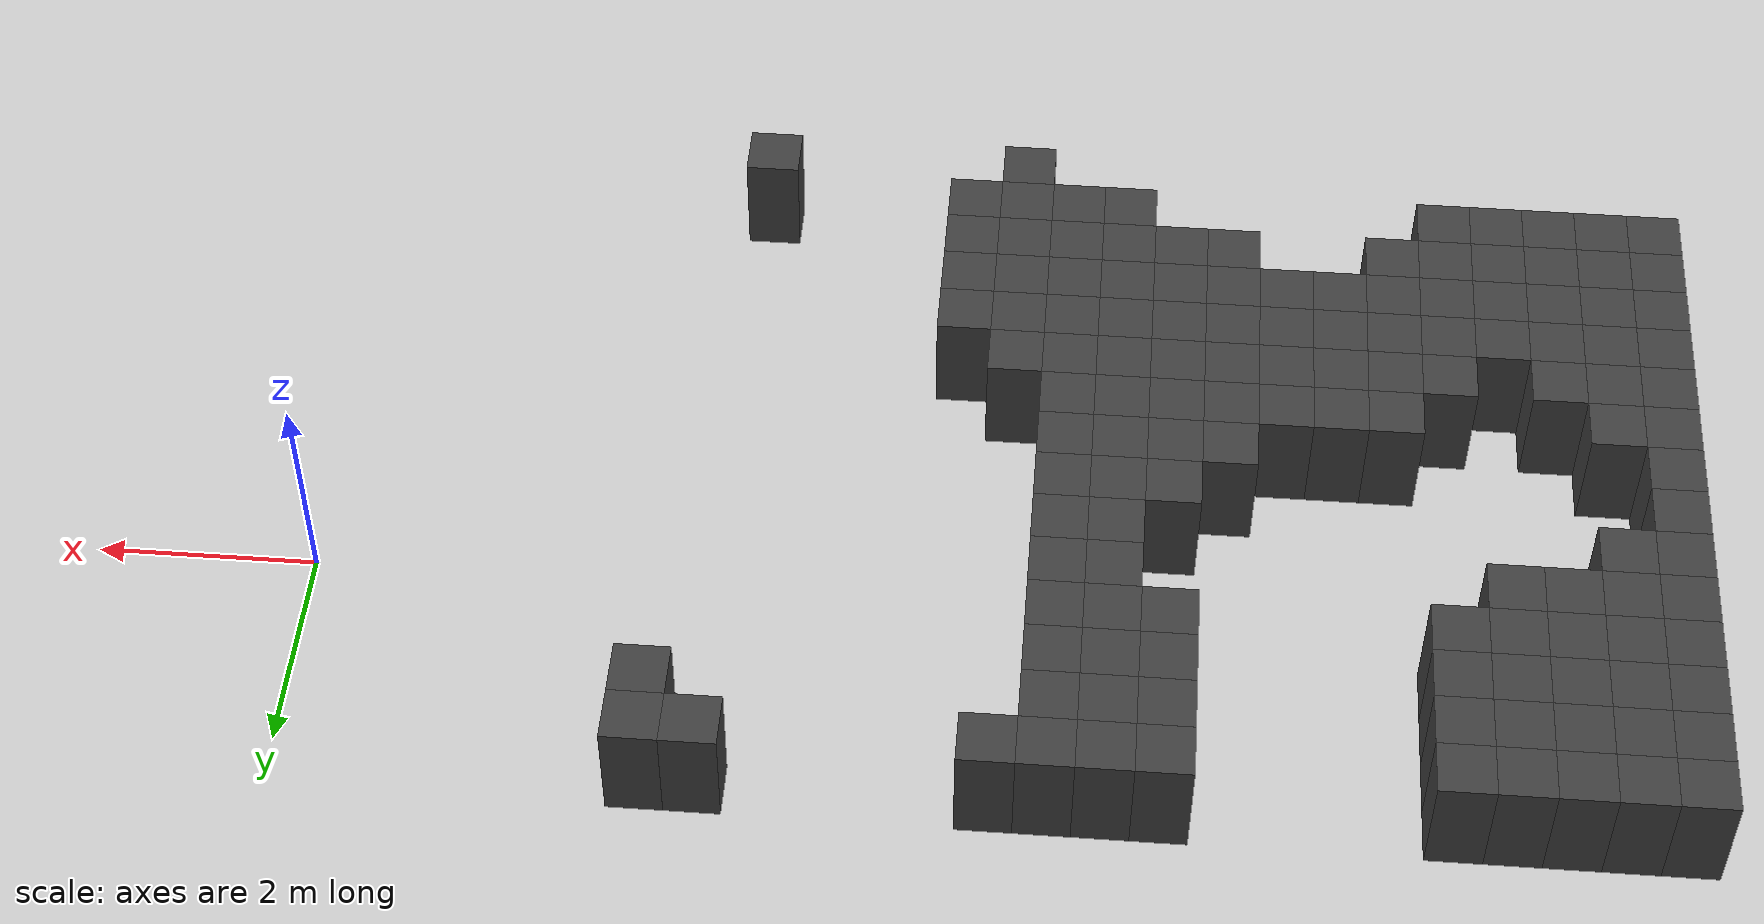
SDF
<sdf version="1.7">
 <world name="map_7981">
  <model name="ground_plane">
   <static>true</static>
   <link name="link">
    <collision name="collision">
     <geometry><plane><normal>0 0 1</normal><size>200 200</size></plane></geometry>
    </collision>
    <visual name="visual">
     <geometry><plane><normal>0 0 1</normal><size>200 200</size></plane></geometry>
     <material><ambient>0.8 0.8 0.8 1</ambient><diffuse>0.8 0.8 0.8 1</diffuse></material>
    </visual>
   </link>
  </model>
  <model name="maze_environment">
   <static>true</static>
   <link name="wall_288">
    <pose>-12.250 2.250 0.500 0 0 0</pose>
    <collision name="col"><geometry><box><size>0.5 0.5 1.0</size></box></geometry></collision>
    <visual name="vis">
     <geometry><box><size>0.5 0.5 1.0</size></box></geometry>
     <material><ambient>0.15 0.15 0.15 1</ambient><diffuse>0.25 0.25 0.25 1</diffuse></material>
    </visual>
   </link>
   <link name="wall_289">
    <pose>-11.750 2.250 0.500 0 0 0</pose>
    <collision name="col"><geometry><box><size>0.5 0.5 1.0</size></box></geometry></collision>
    <visual name="vis">
     <geometry><box><size>0.5 0.5 1.0</size></box></geometry>
     <material><ambient>0.15 0.15 0.15 1</ambient><diffuse>0.25 0.25 0.25 1</diffuse></material>
    </visual>
   </link>
   <link name="wall_290">
    <pose>-11.250 2.250 0.500 0 0 0</pose>
    <collision name="col"><geometry><box><size>0.5 0.5 1.0</size></box></geometry></collision>
    <visual name="vis">
     <geometry><box><size>0.5 0.5 1.0</size></box></geometry>
     <material><ambient>0.15 0.15 0.15 1</ambient><diffuse>0.25 0.25 0.25 1</diffuse></material>
    </visual>
   </link>
   <link name="wall_291">
    <pose>-10.750 2.250 0.500 0 0 0</pose>
    <collision name="col"><geometry><box><size>0.5 0.5 1.0</size></box></geometry></collision>
    <visual name="vis">
     <geometry><box><size>0.5 0.5 1.0</size></box></geometry>
     <material><ambient>0.15 0.15 0.15 1</ambient><diffuse>0.25 0.25 0.25 1</diffuse></material>
    </visual>
   </link>
   <link name="wall_292">
    <pose>-10.250 2.250 0.500 0 0 0</pose>
    <collision name="col"><geometry><box><size>0.5 0.5 1.0</size></box></geometry></collision>
    <visual name="vis">
     <geometry><box><size>0.5 0.5 1.0</size></box></geometry>
     <material><ambient>0.15 0.15 0.15 1</ambient><diffuse>0.25 0.25 0.25 1</diffuse></material>
    </visual>
   </link>
   <link name="wall_293">
    <pose>-7.750 2.250 0.500 0 0 0</pose>
    <collision name="col"><geometry><box><size>0.5 0.5 1.0</size></box></geometry></collision>
    <visual name="vis">
     <geometry><box><size>0.5 0.5 1.0</size></box></geometry>
     <material><ambient>0.15 0.15 0.15 1</ambient><diffuse>0.25 0.25 0.25 1</diffuse></material>
    </visual>
   </link>
   <link name="wall_294">
    <pose>-7.250 2.250 0.500 0 0 0</pose>
    <collision name="col"><geometry><box><size>0.5 0.5 1.0</size></box></geometry></collision>
    <visual name="vis">
     <geometry><box><size>0.5 0.5 1.0</size></box></geometry>
     <material><ambient>0.15 0.15 0.15 1</ambient><diffuse>0.25 0.25 0.25 1</diffuse></material>
    </visual>
   </link>
   <link name="wall_295">
    <pose>-6.750 2.250 0.500 0 0 0</pose>
    <collision name="col"><geometry><box><size>0.5 0.5 1.0</size></box></geometry></collision>
    <visual name="vis">
     <geometry><box><size>0.5 0.5 1.0</size></box></geometry>
     <material><ambient>0.15 0.15 0.15 1</ambient><diffuse>0.25 0.25 0.25 1</diffuse></material>
    </visual>
   </link>
   <link name="wall_296">
    <pose>-6.250 2.250 0.500 0 0 0</pose>
    <collision name="col"><geometry><box><size>0.5 0.5 1.0</size></box></geometry></collision>
    <visual name="vis">
     <geometry><box><size>0.5 0.5 1.0</size></box></geometry>
     <material><ambient>0.15 0.15 0.15 1</ambient><diffuse>0.25 0.25 0.25 1</diffuse></material>
    </visual>
   </link>
   <link name="wall_297">
    <pose>-3.750 2.250 0.500 0 0 0</pose>
    <collision name="col"><geometry><box><size>0.5 0.5 1.0</size></box></geometry></collision>
    <visual name="vis">
     <geometry><box><size>0.5 0.5 1.0</size></box></geometry>
     <material><ambient>0.15 0.15 0.15 1</ambient><diffuse>0.25 0.25 0.25 1</diffuse></material>
    </visual>
   </link>
   <link name="wall_298">
    <pose>-3.250 2.250 0.500 0 0 0</pose>
    <collision name="col"><geometry><box><size>0.5 0.5 1.0</size></box></geometry></collision>
    <visual name="vis">
     <geometry><box><size>0.5 0.5 1.0</size></box></geometry>
     <material><ambient>0.15 0.15 0.15 1</ambient><diffuse>0.25 0.25 0.25 1</diffuse></material>
    </visual>
   </link>
   <link name="wall_313">
    <pose>-12.250 1.750 0.500 0 0 0</pose>
    <collision name="col"><geometry><box><size>0.5 0.5 1.0</size></box></geometry></collision>
    <visual name="vis">
     <geometry><box><size>0.5 0.5 1.0</size></box></geometry>
     <material><ambient>0.15 0.15 0.15 1</ambient><diffuse>0.25 0.25 0.25 1</diffuse></material>
    </visual>
   </link>
   <link name="wall_314">
    <pose>-11.750 1.750 0.500 0 0 0</pose>
    <collision name="col"><geometry><box><size>0.5 0.5 1.0</size></box></geometry></collision>
    <visual name="vis">
     <geometry><box><size>0.5 0.5 1.0</size></box></geometry>
     <material><ambient>0.15 0.15 0.15 1</ambient><diffuse>0.25 0.25 0.25 1</diffuse></material>
    </visual>
   </link>
   <link name="wall_315">
    <pose>-11.250 1.750 0.500 0 0 0</pose>
    <collision name="col"><geometry><box><size>0.5 0.5 1.0</size></box></geometry></collision>
    <visual name="vis">
     <geometry><box><size>0.5 0.5 1.0</size></box></geometry>
     <material><ambient>0.15 0.15 0.15 1</ambient><diffuse>0.25 0.25 0.25 1</diffuse></material>
    </visual>
   </link>
   <link name="wall_316">
    <pose>-10.750 1.750 0.500 0 0 0</pose>
    <collision name="col"><geometry><box><size>0.5 0.5 1.0</size></box></geometry></collision>
    <visual name="vis">
     <geometry><box><size>0.5 0.5 1.0</size></box></geometry>
     <material><ambient>0.15 0.15 0.15 1</ambient><diffuse>0.25 0.25 0.25 1</diffuse></material>
    </visual>
   </link>
   <link name="wall_317">
    <pose>-10.250 1.750 0.500 0 0 0</pose>
    <collision name="col"><geometry><box><size>0.5 0.5 1.0</size></box></geometry></collision>
    <visual name="vis">
     <geometry><box><size>0.5 0.5 1.0</size></box></geometry>
     <material><ambient>0.15 0.15 0.15 1</ambient><diffuse>0.25 0.25 0.25 1</diffuse></material>
    </visual>
   </link>
   <link name="wall_318">
    <pose>-7.750 1.750 0.500 0 0 0</pose>
    <collision name="col"><geometry><box><size>0.5 0.5 1.0</size></box></geometry></collision>
    <visual name="vis">
     <geometry><box><size>0.5 0.5 1.0</size></box></geometry>
     <material><ambient>0.15 0.15 0.15 1</ambient><diffuse>0.25 0.25 0.25 1</diffuse></material>
    </visual>
   </link>
   <link name="wall_319">
    <pose>-7.250 1.750 0.500 0 0 0</pose>
    <collision name="col"><geometry><box><size>0.5 0.5 1.0</size></box></geometry></collision>
    <visual name="vis">
     <geometry><box><size>0.5 0.5 1.0</size></box></geometry>
     <material><ambient>0.15 0.15 0.15 1</ambient><diffuse>0.25 0.25 0.25 1</diffuse></material>
    </visual>
   </link>
   <link name="wall_320">
    <pose>-6.750 1.750 0.500 0 0 0</pose>
    <collision name="col"><geometry><box><size>0.5 0.5 1.0</size></box></geometry></collision>
    <visual name="vis">
     <geometry><box><size>0.5 0.5 1.0</size></box></geometry>
     <material><ambient>0.15 0.15 0.15 1</ambient><diffuse>0.25 0.25 0.25 1</diffuse></material>
    </visual>
   </link>
   <link name="wall_321">
    <pose>-3.250 1.750 0.500 0 0 0</pose>
    <collision name="col"><geometry><box><size>0.5 0.5 1.0</size></box></geometry></collision>
    <visual name="vis">
     <geometry><box><size>0.5 0.5 1.0</size></box></geometry>
     <material><ambient>0.15 0.15 0.15 1</ambient><diffuse>0.25 0.25 0.25 1</diffuse></material>
    </visual>
   </link>
   <link name="wall_339">
    <pose>-12.250 1.250 0.500 0 0 0</pose>
    <collision name="col"><geometry><box><size>0.5 0.5 1.0</size></box></geometry></collision>
    <visual name="vis">
     <geometry><box><size>0.5 0.5 1.0</size></box></geometry>
     <material><ambient>0.15 0.15 0.15 1</ambient><diffuse>0.25 0.25 0.25 1</diffuse></material>
    </visual>
   </link>
   <link name="wall_340">
    <pose>-11.750 1.250 0.500 0 0 0</pose>
    <collision name="col"><geometry><box><size>0.5 0.5 1.0</size></box></geometry></collision>
    <visual name="vis">
     <geometry><box><size>0.5 0.5 1.0</size></box></geometry>
     <material><ambient>0.15 0.15 0.15 1</ambient><diffuse>0.25 0.25 0.25 1</diffuse></material>
    </visual>
   </link>
   <link name="wall_341">
    <pose>-11.250 1.250 0.500 0 0 0</pose>
    <collision name="col"><geometry><box><size>0.5 0.5 1.0</size></box></geometry></collision>
    <visual name="vis">
     <geometry><box><size>0.5 0.5 1.0</size></box></geometry>
     <material><ambient>0.15 0.15 0.15 1</ambient><diffuse>0.25 0.25 0.25 1</diffuse></material>
    </visual>
   </link>
   <link name="wall_342">
    <pose>-10.750 1.250 0.500 0 0 0</pose>
    <collision name="col"><geometry><box><size>0.5 0.5 1.0</size></box></geometry></collision>
    <visual name="vis">
     <geometry><box><size>0.5 0.5 1.0</size></box></geometry>
     <material><ambient>0.15 0.15 0.15 1</ambient><diffuse>0.25 0.25 0.25 1</diffuse></material>
    </visual>
   </link>
   <link name="wall_343">
    <pose>-10.250 1.250 0.500 0 0 0</pose>
    <collision name="col"><geometry><box><size>0.5 0.5 1.0</size></box></geometry></collision>
    <visual name="vis">
     <geometry><box><size>0.5 0.5 1.0</size></box></geometry>
     <material><ambient>0.15 0.15 0.15 1</ambient><diffuse>0.25 0.25 0.25 1</diffuse></material>
    </visual>
   </link>
   <link name="wall_344">
    <pose>-7.750 1.250 0.500 0 0 0</pose>
    <collision name="col"><geometry><box><size>0.5 0.5 1.0</size></box></geometry></collision>
    <visual name="vis">
     <geometry><box><size>0.5 0.5 1.0</size></box></geometry>
     <material><ambient>0.15 0.15 0.15 1</ambient><diffuse>0.25 0.25 0.25 1</diffuse></material>
    </visual>
   </link>
   <link name="wall_345">
    <pose>-7.250 1.250 0.500 0 0 0</pose>
    <collision name="col"><geometry><box><size>0.5 0.5 1.0</size></box></geometry></collision>
    <visual name="vis">
     <geometry><box><size>0.5 0.5 1.0</size></box></geometry>
     <material><ambient>0.15 0.15 0.15 1</ambient><diffuse>0.25 0.25 0.25 1</diffuse></material>
    </visual>
   </link>
   <link name="wall_346">
    <pose>-6.750 1.250 0.500 0 0 0</pose>
    <collision name="col"><geometry><box><size>0.5 0.5 1.0</size></box></geometry></collision>
    <visual name="vis">
     <geometry><box><size>0.5 0.5 1.0</size></box></geometry>
     <material><ambient>0.15 0.15 0.15 1</ambient><diffuse>0.25 0.25 0.25 1</diffuse></material>
    </visual>
   </link>
   <link name="wall_358">
    <pose>-12.250 0.750 0.500 0 0 0</pose>
    <collision name="col"><geometry><box><size>0.5 0.5 1.0</size></box></geometry></collision>
    <visual name="vis">
     <geometry><box><size>0.5 0.5 1.0</size></box></geometry>
     <material><ambient>0.15 0.15 0.15 1</ambient><diffuse>0.25 0.25 0.25 1</diffuse></material>
    </visual>
   </link>
   <link name="wall_359">
    <pose>-11.750 0.750 0.500 0 0 0</pose>
    <collision name="col"><geometry><box><size>0.5 0.5 1.0</size></box></geometry></collision>
    <visual name="vis">
     <geometry><box><size>0.5 0.5 1.0</size></box></geometry>
     <material><ambient>0.15 0.15 0.15 1</ambient><diffuse>0.25 0.25 0.25 1</diffuse></material>
    </visual>
   </link>
   <link name="wall_360">
    <pose>-11.250 0.750 0.500 0 0 0</pose>
    <collision name="col"><geometry><box><size>0.5 0.5 1.0</size></box></geometry></collision>
    <visual name="vis">
     <geometry><box><size>0.5 0.5 1.0</size></box></geometry>
     <material><ambient>0.15 0.15 0.15 1</ambient><diffuse>0.25 0.25 0.25 1</diffuse></material>
    </visual>
   </link>
   <link name="wall_361">
    <pose>-10.750 0.750 0.500 0 0 0</pose>
    <collision name="col"><geometry><box><size>0.5 0.5 1.0</size></box></geometry></collision>
    <visual name="vis">
     <geometry><box><size>0.5 0.5 1.0</size></box></geometry>
     <material><ambient>0.15 0.15 0.15 1</ambient><diffuse>0.25 0.25 0.25 1</diffuse></material>
    </visual>
   </link>
   <link name="wall_362">
    <pose>-10.250 0.750 0.500 0 0 0</pose>
    <collision name="col"><geometry><box><size>0.5 0.5 1.0</size></box></geometry></collision>
    <visual name="vis">
     <geometry><box><size>0.5 0.5 1.0</size></box></geometry>
     <material><ambient>0.15 0.15 0.15 1</ambient><diffuse>0.25 0.25 0.25 1</diffuse></material>
    </visual>
   </link>
   <link name="wall_363">
    <pose>-7.750 0.750 0.500 0 0 0</pose>
    <collision name="col"><geometry><box><size>0.5 0.5 1.0</size></box></geometry></collision>
    <visual name="vis">
     <geometry><box><size>0.5 0.5 1.0</size></box></geometry>
     <material><ambient>0.15 0.15 0.15 1</ambient><diffuse>0.25 0.25 0.25 1</diffuse></material>
    </visual>
   </link>
   <link name="wall_364">
    <pose>-7.250 0.750 0.500 0 0 0</pose>
    <collision name="col"><geometry><box><size>0.5 0.5 1.0</size></box></geometry></collision>
    <visual name="vis">
     <geometry><box><size>0.5 0.5 1.0</size></box></geometry>
     <material><ambient>0.15 0.15 0.15 1</ambient><diffuse>0.25 0.25 0.25 1</diffuse></material>
    </visual>
   </link>
   <link name="wall_365">
    <pose>-6.750 0.750 0.500 0 0 0</pose>
    <collision name="col"><geometry><box><size>0.5 0.5 1.0</size></box></geometry></collision>
    <visual name="vis">
     <geometry><box><size>0.5 0.5 1.0</size></box></geometry>
     <material><ambient>0.15 0.15 0.15 1</ambient><diffuse>0.25 0.25 0.25 1</diffuse></material>
    </visual>
   </link>
   <link name="wall_370">
    <pose>-12.250 0.250 0.500 0 0 0</pose>
    <collision name="col"><geometry><box><size>0.5 0.5 1.0</size></box></geometry></collision>
    <visual name="vis">
     <geometry><box><size>0.5 0.5 1.0</size></box></geometry>
     <material><ambient>0.15 0.15 0.15 1</ambient><diffuse>0.25 0.25 0.25 1</diffuse></material>
    </visual>
   </link>
   <link name="wall_371">
    <pose>-11.750 0.250 0.500 0 0 0</pose>
    <collision name="col"><geometry><box><size>0.5 0.5 1.0</size></box></geometry></collision>
    <visual name="vis">
     <geometry><box><size>0.5 0.5 1.0</size></box></geometry>
     <material><ambient>0.15 0.15 0.15 1</ambient><diffuse>0.25 0.25 0.25 1</diffuse></material>
    </visual>
   </link>
   <link name="wall_372">
    <pose>-11.250 0.250 0.500 0 0 0</pose>
    <collision name="col"><geometry><box><size>0.5 0.5 1.0</size></box></geometry></collision>
    <visual name="vis">
     <geometry><box><size>0.5 0.5 1.0</size></box></geometry>
     <material><ambient>0.15 0.15 0.15 1</ambient><diffuse>0.25 0.25 0.25 1</diffuse></material>
    </visual>
   </link>
   <link name="wall_373">
    <pose>-10.750 0.250 0.500 0 0 0</pose>
    <collision name="col"><geometry><box><size>0.5 0.5 1.0</size></box></geometry></collision>
    <visual name="vis">
     <geometry><box><size>0.5 0.5 1.0</size></box></geometry>
     <material><ambient>0.15 0.15 0.15 1</ambient><diffuse>0.25 0.25 0.25 1</diffuse></material>
    </visual>
   </link>
   <link name="wall_374">
    <pose>-7.250 0.250 0.500 0 0 0</pose>
    <collision name="col"><geometry><box><size>0.5 0.5 1.0</size></box></geometry></collision>
    <visual name="vis">
     <geometry><box><size>0.5 0.5 1.0</size></box></geometry>
     <material><ambient>0.15 0.15 0.15 1</ambient><diffuse>0.25 0.25 0.25 1</diffuse></material>
    </visual>
   </link>
   <link name="wall_375">
    <pose>-6.750 0.250 0.500 0 0 0</pose>
    <collision name="col"><geometry><box><size>0.5 0.5 1.0</size></box></geometry></collision>
    <visual name="vis">
     <geometry><box><size>0.5 0.5 1.0</size></box></geometry>
     <material><ambient>0.15 0.15 0.15 1</ambient><diffuse>0.25 0.25 0.25 1</diffuse></material>
    </visual>
   </link>
   <link name="wall_380">
    <pose>-12.250 -0.250 0.500 0 0 0</pose>
    <collision name="col"><geometry><box><size>0.5 0.5 1.0</size></box></geometry></collision>
    <visual name="vis">
     <geometry><box><size>0.5 0.5 1.0</size></box></geometry>
     <material><ambient>0.15 0.15 0.15 1</ambient><diffuse>0.25 0.25 0.25 1</diffuse></material>
    </visual>
   </link>
   <link name="wall_381">
    <pose>-11.750 -0.250 0.500 0 0 0</pose>
    <collision name="col"><geometry><box><size>0.5 0.5 1.0</size></box></geometry></collision>
    <visual name="vis">
     <geometry><box><size>0.5 0.5 1.0</size></box></geometry>
     <material><ambient>0.15 0.15 0.15 1</ambient><diffuse>0.25 0.25 0.25 1</diffuse></material>
    </visual>
   </link>
   <link name="wall_382">
    <pose>-7.250 -0.250 0.500 0 0 0</pose>
    <collision name="col"><geometry><box><size>0.5 0.5 1.0</size></box></geometry></collision>
    <visual name="vis">
     <geometry><box><size>0.5 0.5 1.0</size></box></geometry>
     <material><ambient>0.15 0.15 0.15 1</ambient><diffuse>0.25 0.25 0.25 1</diffuse></material>
    </visual>
   </link>
   <link name="wall_383">
    <pose>-6.750 -0.250 0.500 0 0 0</pose>
    <collision name="col"><geometry><box><size>0.5 0.5 1.0</size></box></geometry></collision>
    <visual name="vis">
     <geometry><box><size>0.5 0.5 1.0</size></box></geometry>
     <material><ambient>0.15 0.15 0.15 1</ambient><diffuse>0.25 0.25 0.25 1</diffuse></material>
    </visual>
   </link>
   <link name="wall_392">
    <pose>-12.250 -0.750 0.500 0 0 0</pose>
    <collision name="col"><geometry><box><size>0.5 0.5 1.0</size></box></geometry></collision>
    <visual name="vis">
     <geometry><box><size>0.5 0.5 1.0</size></box></geometry>
     <material><ambient>0.15 0.15 0.15 1</ambient><diffuse>0.25 0.25 0.25 1</diffuse></material>
    </visual>
   </link>
   <link name="wall_393">
    <pose>-7.750 -0.750 0.500 0 0 0</pose>
    <collision name="col"><geometry><box><size>0.5 0.5 1.0</size></box></geometry></collision>
    <visual name="vis">
     <geometry><box><size>0.5 0.5 1.0</size></box></geometry>
     <material><ambient>0.15 0.15 0.15 1</ambient><diffuse>0.25 0.25 0.25 1</diffuse></material>
    </visual>
   </link>
   <link name="wall_394">
    <pose>-7.250 -0.750 0.500 0 0 0</pose>
    <collision name="col"><geometry><box><size>0.5 0.5 1.0</size></box></geometry></collision>
    <visual name="vis">
     <geometry><box><size>0.5 0.5 1.0</size></box></geometry>
     <material><ambient>0.15 0.15 0.15 1</ambient><diffuse>0.25 0.25 0.25 1</diffuse></material>
    </visual>
   </link>
   <link name="wall_395">
    <pose>-6.750 -0.750 0.500 0 0 0</pose>
    <collision name="col"><geometry><box><size>0.5 0.5 1.0</size></box></geometry></collision>
    <visual name="vis">
     <geometry><box><size>0.5 0.5 1.0</size></box></geometry>
     <material><ambient>0.15 0.15 0.15 1</ambient><diffuse>0.25 0.25 0.25 1</diffuse></material>
    </visual>
   </link>
   <link name="wall_405">
    <pose>-12.250 -1.250 0.500 0 0 0</pose>
    <collision name="col"><geometry><box><size>0.5 0.5 1.0</size></box></geometry></collision>
    <visual name="vis">
     <geometry><box><size>0.5 0.5 1.0</size></box></geometry>
     <material><ambient>0.15 0.15 0.15 1</ambient><diffuse>0.25 0.25 0.25 1</diffuse></material>
    </visual>
   </link>
   <link name="wall_406">
    <pose>-8.250 -1.250 0.500 0 0 0</pose>
    <collision name="col"><geometry><box><size>0.5 0.5 1.0</size></box></geometry></collision>
    <visual name="vis">
     <geometry><box><size>0.5 0.5 1.0</size></box></geometry>
     <material><ambient>0.15 0.15 0.15 1</ambient><diffuse>0.25 0.25 0.25 1</diffuse></material>
    </visual>
   </link>
   <link name="wall_407">
    <pose>-7.750 -1.250 0.500 0 0 0</pose>
    <collision name="col"><geometry><box><size>0.5 0.5 1.0</size></box></geometry></collision>
    <visual name="vis">
     <geometry><box><size>0.5 0.5 1.0</size></box></geometry>
     <material><ambient>0.15 0.15 0.15 1</ambient><diffuse>0.25 0.25 0.25 1</diffuse></material>
    </visual>
   </link>
   <link name="wall_408">
    <pose>-7.250 -1.250 0.500 0 0 0</pose>
    <collision name="col"><geometry><box><size>0.5 0.5 1.0</size></box></geometry></collision>
    <visual name="vis">
     <geometry><box><size>0.5 0.5 1.0</size></box></geometry>
     <material><ambient>0.15 0.15 0.15 1</ambient><diffuse>0.25 0.25 0.25 1</diffuse></material>
    </visual>
   </link>
   <link name="wall_409">
    <pose>-6.750 -1.250 0.500 0 0 0</pose>
    <collision name="col"><geometry><box><size>0.5 0.5 1.0</size></box></geometry></collision>
    <visual name="vis">
     <geometry><box><size>0.5 0.5 1.0</size></box></geometry>
     <material><ambient>0.15 0.15 0.15 1</ambient><diffuse>0.25 0.25 0.25 1</diffuse></material>
    </visual>
   </link>
   <link name="wall_420">
    <pose>-12.250 -1.750 0.500 0 0 0</pose>
    <collision name="col"><geometry><box><size>0.5 0.5 1.0</size></box></geometry></collision>
    <visual name="vis">
     <geometry><box><size>0.5 0.5 1.0</size></box></geometry>
     <material><ambient>0.15 0.15 0.15 1</ambient><diffuse>0.25 0.25 0.25 1</diffuse></material>
    </visual>
   </link>
   <link name="wall_421">
    <pose>-11.750 -1.750 0.500 0 0 0</pose>
    <collision name="col"><geometry><box><size>0.5 0.5 1.0</size></box></geometry></collision>
    <visual name="vis">
     <geometry><box><size>0.5 0.5 1.0</size></box></geometry>
     <material><ambient>0.15 0.15 0.15 1</ambient><diffuse>0.25 0.25 0.25 1</diffuse></material>
    </visual>
   </link>
   <link name="wall_422">
    <pose>-9.750 -1.750 0.500 0 0 0</pose>
    <collision name="col"><geometry><box><size>0.5 0.5 1.0</size></box></geometry></collision>
    <visual name="vis">
     <geometry><box><size>0.5 0.5 1.0</size></box></geometry>
     <material><ambient>0.15 0.15 0.15 1</ambient><diffuse>0.25 0.25 0.25 1</diffuse></material>
    </visual>
   </link>
   <link name="wall_423">
    <pose>-9.250 -1.750 0.500 0 0 0</pose>
    <collision name="col"><geometry><box><size>0.5 0.5 1.0</size></box></geometry></collision>
    <visual name="vis">
     <geometry><box><size>0.5 0.5 1.0</size></box></geometry>
     <material><ambient>0.15 0.15 0.15 1</ambient><diffuse>0.25 0.25 0.25 1</diffuse></material>
    </visual>
   </link>
   <link name="wall_424">
    <pose>-8.750 -1.750 0.500 0 0 0</pose>
    <collision name="col"><geometry><box><size>0.5 0.5 1.0</size></box></geometry></collision>
    <visual name="vis">
     <geometry><box><size>0.5 0.5 1.0</size></box></geometry>
     <material><ambient>0.15 0.15 0.15 1</ambient><diffuse>0.25 0.25 0.25 1</diffuse></material>
    </visual>
   </link>
   <link name="wall_425">
    <pose>-8.250 -1.750 0.500 0 0 0</pose>
    <collision name="col"><geometry><box><size>0.5 0.5 1.0</size></box></geometry></collision>
    <visual name="vis">
     <geometry><box><size>0.5 0.5 1.0</size></box></geometry>
     <material><ambient>0.15 0.15 0.15 1</ambient><diffuse>0.25 0.25 0.25 1</diffuse></material>
    </visual>
   </link>
   <link name="wall_426">
    <pose>-7.750 -1.750 0.500 0 0 0</pose>
    <collision name="col"><geometry><box><size>0.5 0.5 1.0</size></box></geometry></collision>
    <visual name="vis">
     <geometry><box><size>0.5 0.5 1.0</size></box></geometry>
     <material><ambient>0.15 0.15 0.15 1</ambient><diffuse>0.25 0.25 0.25 1</diffuse></material>
    </visual>
   </link>
   <link name="wall_427">
    <pose>-7.250 -1.750 0.500 0 0 0</pose>
    <collision name="col"><geometry><box><size>0.5 0.5 1.0</size></box></geometry></collision>
    <visual name="vis">
     <geometry><box><size>0.5 0.5 1.0</size></box></geometry>
     <material><ambient>0.15 0.15 0.15 1</ambient><diffuse>0.25 0.25 0.25 1</diffuse></material>
    </visual>
   </link>
   <link name="wall_428">
    <pose>-6.750 -1.750 0.500 0 0 0</pose>
    <collision name="col"><geometry><box><size>0.5 0.5 1.0</size></box></geometry></collision>
    <visual name="vis">
     <geometry><box><size>0.5 0.5 1.0</size></box></geometry>
     <material><ambient>0.15 0.15 0.15 1</ambient><diffuse>0.25 0.25 0.25 1</diffuse></material>
    </visual>
   </link>
   <link name="wall_438">
    <pose>-12.250 -2.250 0.500 0 0 0</pose>
    <collision name="col"><geometry><box><size>0.5 0.5 1.0</size></box></geometry></collision>
    <visual name="vis">
     <geometry><box><size>0.5 0.5 1.0</size></box></geometry>
     <material><ambient>0.15 0.15 0.15 1</ambient><diffuse>0.25 0.25 0.25 1</diffuse></material>
    </visual>
   </link>
   <link name="wall_439">
    <pose>-11.750 -2.250 0.500 0 0 0</pose>
    <collision name="col"><geometry><box><size>0.5 0.5 1.0</size></box></geometry></collision>
    <visual name="vis">
     <geometry><box><size>0.5 0.5 1.0</size></box></geometry>
     <material><ambient>0.15 0.15 0.15 1</ambient><diffuse>0.25 0.25 0.25 1</diffuse></material>
    </visual>
   </link>
   <link name="wall_440">
    <pose>-11.250 -2.250 0.500 0 0 0</pose>
    <collision name="col"><geometry><box><size>0.5 0.5 1.0</size></box></geometry></collision>
    <visual name="vis">
     <geometry><box><size>0.5 0.5 1.0</size></box></geometry>
     <material><ambient>0.15 0.15 0.15 1</ambient><diffuse>0.25 0.25 0.25 1</diffuse></material>
    </visual>
   </link>
   <link name="wall_441">
    <pose>-10.250 -2.250 0.500 0 0 0</pose>
    <collision name="col"><geometry><box><size>0.5 0.5 1.0</size></box></geometry></collision>
    <visual name="vis">
     <geometry><box><size>0.5 0.5 1.0</size></box></geometry>
     <material><ambient>0.15 0.15 0.15 1</ambient><diffuse>0.25 0.25 0.25 1</diffuse></material>
    </visual>
   </link>
   <link name="wall_442">
    <pose>-9.750 -2.250 0.500 0 0 0</pose>
    <collision name="col"><geometry><box><size>0.5 0.5 1.0</size></box></geometry></collision>
    <visual name="vis">
     <geometry><box><size>0.5 0.5 1.0</size></box></geometry>
     <material><ambient>0.15 0.15 0.15 1</ambient><diffuse>0.25 0.25 0.25 1</diffuse></material>
    </visual>
   </link>
   <link name="wall_443">
    <pose>-9.250 -2.250 0.500 0 0 0</pose>
    <collision name="col"><geometry><box><size>0.5 0.5 1.0</size></box></geometry></collision>
    <visual name="vis">
     <geometry><box><size>0.5 0.5 1.0</size></box></geometry>
     <material><ambient>0.15 0.15 0.15 1</ambient><diffuse>0.25 0.25 0.25 1</diffuse></material>
    </visual>
   </link>
   <link name="wall_444">
    <pose>-8.750 -2.250 0.500 0 0 0</pose>
    <collision name="col"><geometry><box><size>0.5 0.5 1.0</size></box></geometry></collision>
    <visual name="vis">
     <geometry><box><size>0.5 0.5 1.0</size></box></geometry>
     <material><ambient>0.15 0.15 0.15 1</ambient><diffuse>0.25 0.25 0.25 1</diffuse></material>
    </visual>
   </link>
   <link name="wall_445">
    <pose>-8.250 -2.250 0.500 0 0 0</pose>
    <collision name="col"><geometry><box><size>0.5 0.5 1.0</size></box></geometry></collision>
    <visual name="vis">
     <geometry><box><size>0.5 0.5 1.0</size></box></geometry>
     <material><ambient>0.15 0.15 0.15 1</ambient><diffuse>0.25 0.25 0.25 1</diffuse></material>
    </visual>
   </link>
   <link name="wall_446">
    <pose>-7.750 -2.250 0.500 0 0 0</pose>
    <collision name="col"><geometry><box><size>0.5 0.5 1.0</size></box></geometry></collision>
    <visual name="vis">
     <geometry><box><size>0.5 0.5 1.0</size></box></geometry>
     <material><ambient>0.15 0.15 0.15 1</ambient><diffuse>0.25 0.25 0.25 1</diffuse></material>
    </visual>
   </link>
   <link name="wall_447">
    <pose>-7.250 -2.250 0.500 0 0 0</pose>
    <collision name="col"><geometry><box><size>0.5 0.5 1.0</size></box></geometry></collision>
    <visual name="vis">
     <geometry><box><size>0.5 0.5 1.0</size></box></geometry>
     <material><ambient>0.15 0.15 0.15 1</ambient><diffuse>0.25 0.25 0.25 1</diffuse></material>
    </visual>
   </link>
   <link name="wall_448">
    <pose>-6.750 -2.250 0.500 0 0 0</pose>
    <collision name="col"><geometry><box><size>0.5 0.5 1.0</size></box></geometry></collision>
    <visual name="vis">
     <geometry><box><size>0.5 0.5 1.0</size></box></geometry>
     <material><ambient>0.15 0.15 0.15 1</ambient><diffuse>0.25 0.25 0.25 1</diffuse></material>
    </visual>
   </link>
   <link name="wall_449">
    <pose>-6.250 -2.250 0.500 0 0 0</pose>
    <collision name="col"><geometry><box><size>0.5 0.5 1.0</size></box></geometry></collision>
    <visual name="vis">
     <geometry><box><size>0.5 0.5 1.0</size></box></geometry>
     <material><ambient>0.15 0.15 0.15 1</ambient><diffuse>0.25 0.25 0.25 1</diffuse></material>
    </visual>
   </link>
   <link name="wall_457">
    <pose>-12.250 -2.750 0.500 0 0 0</pose>
    <collision name="col"><geometry><box><size>0.5 0.5 1.0</size></box></geometry></collision>
    <visual name="vis">
     <geometry><box><size>0.5 0.5 1.0</size></box></geometry>
     <material><ambient>0.15 0.15 0.15 1</ambient><diffuse>0.25 0.25 0.25 1</diffuse></material>
    </visual>
   </link>
   <link name="wall_458">
    <pose>-11.750 -2.750 0.500 0 0 0</pose>
    <collision name="col"><geometry><box><size>0.5 0.5 1.0</size></box></geometry></collision>
    <visual name="vis">
     <geometry><box><size>0.5 0.5 1.0</size></box></geometry>
     <material><ambient>0.15 0.15 0.15 1</ambient><diffuse>0.25 0.25 0.25 1</diffuse></material>
    </visual>
   </link>
   <link name="wall_459">
    <pose>-11.250 -2.750 0.500 0 0 0</pose>
    <collision name="col"><geometry><box><size>0.5 0.5 1.0</size></box></geometry></collision>
    <visual name="vis">
     <geometry><box><size>0.5 0.5 1.0</size></box></geometry>
     <material><ambient>0.15 0.15 0.15 1</ambient><diffuse>0.25 0.25 0.25 1</diffuse></material>
    </visual>
   </link>
   <link name="wall_460">
    <pose>-10.750 -2.750 0.500 0 0 0</pose>
    <collision name="col"><geometry><box><size>0.5 0.5 1.0</size></box></geometry></collision>
    <visual name="vis">
     <geometry><box><size>0.5 0.5 1.0</size></box></geometry>
     <material><ambient>0.15 0.15 0.15 1</ambient><diffuse>0.25 0.25 0.25 1</diffuse></material>
    </visual>
   </link>
   <link name="wall_461">
    <pose>-10.250 -2.750 0.500 0 0 0</pose>
    <collision name="col"><geometry><box><size>0.5 0.5 1.0</size></box></geometry></collision>
    <visual name="vis">
     <geometry><box><size>0.5 0.5 1.0</size></box></geometry>
     <material><ambient>0.15 0.15 0.15 1</ambient><diffuse>0.25 0.25 0.25 1</diffuse></material>
    </visual>
   </link>
   <link name="wall_462">
    <pose>-9.750 -2.750 0.500 0 0 0</pose>
    <collision name="col"><geometry><box><size>0.5 0.5 1.0</size></box></geometry></collision>
    <visual name="vis">
     <geometry><box><size>0.5 0.5 1.0</size></box></geometry>
     <material><ambient>0.15 0.15 0.15 1</ambient><diffuse>0.25 0.25 0.25 1</diffuse></material>
    </visual>
   </link>
   <link name="wall_463">
    <pose>-9.250 -2.750 0.500 0 0 0</pose>
    <collision name="col"><geometry><box><size>0.5 0.5 1.0</size></box></geometry></collision>
    <visual name="vis">
     <geometry><box><size>0.5 0.5 1.0</size></box></geometry>
     <material><ambient>0.15 0.15 0.15 1</ambient><diffuse>0.25 0.25 0.25 1</diffuse></material>
    </visual>
   </link>
   <link name="wall_464">
    <pose>-8.750 -2.750 0.500 0 0 0</pose>
    <collision name="col"><geometry><box><size>0.5 0.5 1.0</size></box></geometry></collision>
    <visual name="vis">
     <geometry><box><size>0.5 0.5 1.0</size></box></geometry>
     <material><ambient>0.15 0.15 0.15 1</ambient><diffuse>0.25 0.25 0.25 1</diffuse></material>
    </visual>
   </link>
   <link name="wall_465">
    <pose>-8.250 -2.750 0.500 0 0 0</pose>
    <collision name="col"><geometry><box><size>0.5 0.5 1.0</size></box></geometry></collision>
    <visual name="vis">
     <geometry><box><size>0.5 0.5 1.0</size></box></geometry>
     <material><ambient>0.15 0.15 0.15 1</ambient><diffuse>0.25 0.25 0.25 1</diffuse></material>
    </visual>
   </link>
   <link name="wall_466">
    <pose>-7.750 -2.750 0.500 0 0 0</pose>
    <collision name="col"><geometry><box><size>0.5 0.5 1.0</size></box></geometry></collision>
    <visual name="vis">
     <geometry><box><size>0.5 0.5 1.0</size></box></geometry>
     <material><ambient>0.15 0.15 0.15 1</ambient><diffuse>0.25 0.25 0.25 1</diffuse></material>
    </visual>
   </link>
   <link name="wall_467">
    <pose>-7.250 -2.750 0.500 0 0 0</pose>
    <collision name="col"><geometry><box><size>0.5 0.5 1.0</size></box></geometry></collision>
    <visual name="vis">
     <geometry><box><size>0.5 0.5 1.0</size></box></geometry>
     <material><ambient>0.15 0.15 0.15 1</ambient><diffuse>0.25 0.25 0.25 1</diffuse></material>
    </visual>
   </link>
   <link name="wall_468">
    <pose>-6.750 -2.750 0.500 0 0 0</pose>
    <collision name="col"><geometry><box><size>0.5 0.5 1.0</size></box></geometry></collision>
    <visual name="vis">
     <geometry><box><size>0.5 0.5 1.0</size></box></geometry>
     <material><ambient>0.15 0.15 0.15 1</ambient><diffuse>0.25 0.25 0.25 1</diffuse></material>
    </visual>
   </link>
   <link name="wall_469">
    <pose>-6.250 -2.750 0.500 0 0 0</pose>
    <collision name="col"><geometry><box><size>0.5 0.5 1.0</size></box></geometry></collision>
    <visual name="vis">
     <geometry><box><size>0.5 0.5 1.0</size></box></geometry>
     <material><ambient>0.15 0.15 0.15 1</ambient><diffuse>0.25 0.25 0.25 1</diffuse></material>
    </visual>
   </link>
   <link name="wall_470">
    <pose>-5.750 -2.750 0.500 0 0 0</pose>
    <collision name="col"><geometry><box><size>0.5 0.5 1.0</size></box></geometry></collision>
    <visual name="vis">
     <geometry><box><size>0.5 0.5 1.0</size></box></geometry>
     <material><ambient>0.15 0.15 0.15 1</ambient><diffuse>0.25 0.25 0.25 1</diffuse></material>
    </visual>
   </link>
   <link name="wall_476">
    <pose>-12.250 -3.250 0.500 0 0 0</pose>
    <collision name="col"><geometry><box><size>0.5 0.5 1.0</size></box></geometry></collision>
    <visual name="vis">
     <geometry><box><size>0.5 0.5 1.0</size></box></geometry>
     <material><ambient>0.15 0.15 0.15 1</ambient><diffuse>0.25 0.25 0.25 1</diffuse></material>
    </visual>
   </link>
   <link name="wall_477">
    <pose>-11.750 -3.250 0.500 0 0 0</pose>
    <collision name="col"><geometry><box><size>0.5 0.5 1.0</size></box></geometry></collision>
    <visual name="vis">
     <geometry><box><size>0.5 0.5 1.0</size></box></geometry>
     <material><ambient>0.15 0.15 0.15 1</ambient><diffuse>0.25 0.25 0.25 1</diffuse></material>
    </visual>
   </link>
   <link name="wall_478">
    <pose>-11.250 -3.250 0.500 0 0 0</pose>
    <collision name="col"><geometry><box><size>0.5 0.5 1.0</size></box></geometry></collision>
    <visual name="vis">
     <geometry><box><size>0.5 0.5 1.0</size></box></geometry>
     <material><ambient>0.15 0.15 0.15 1</ambient><diffuse>0.25 0.25 0.25 1</diffuse></material>
    </visual>
   </link>
   <link name="wall_479">
    <pose>-10.750 -3.250 0.500 0 0 0</pose>
    <collision name="col"><geometry><box><size>0.5 0.5 1.0</size></box></geometry></collision>
    <visual name="vis">
     <geometry><box><size>0.5 0.5 1.0</size></box></geometry>
     <material><ambient>0.15 0.15 0.15 1</ambient><diffuse>0.25 0.25 0.25 1</diffuse></material>
    </visual>
   </link>
   <link name="wall_480">
    <pose>-10.250 -3.250 0.500 0 0 0</pose>
    <collision name="col"><geometry><box><size>0.5 0.5 1.0</size></box></geometry></collision>
    <visual name="vis">
     <geometry><box><size>0.5 0.5 1.0</size></box></geometry>
     <material><ambient>0.15 0.15 0.15 1</ambient><diffuse>0.25 0.25 0.25 1</diffuse></material>
    </visual>
   </link>
   <link name="wall_481">
    <pose>-9.750 -3.250 0.500 0 0 0</pose>
    <collision name="col"><geometry><box><size>0.5 0.5 1.0</size></box></geometry></collision>
    <visual name="vis">
     <geometry><box><size>0.5 0.5 1.0</size></box></geometry>
     <material><ambient>0.15 0.15 0.15 1</ambient><diffuse>0.25 0.25 0.25 1</diffuse></material>
    </visual>
   </link>
   <link name="wall_482">
    <pose>-9.250 -3.250 0.500 0 0 0</pose>
    <collision name="col"><geometry><box><size>0.5 0.5 1.0</size></box></geometry></collision>
    <visual name="vis">
     <geometry><box><size>0.5 0.5 1.0</size></box></geometry>
     <material><ambient>0.15 0.15 0.15 1</ambient><diffuse>0.25 0.25 0.25 1</diffuse></material>
    </visual>
   </link>
   <link name="wall_483">
    <pose>-8.750 -3.250 0.500 0 0 0</pose>
    <collision name="col"><geometry><box><size>0.5 0.5 1.0</size></box></geometry></collision>
    <visual name="vis">
     <geometry><box><size>0.5 0.5 1.0</size></box></geometry>
     <material><ambient>0.15 0.15 0.15 1</ambient><diffuse>0.25 0.25 0.25 1</diffuse></material>
    </visual>
   </link>
   <link name="wall_484">
    <pose>-8.250 -3.250 0.500 0 0 0</pose>
    <collision name="col"><geometry><box><size>0.5 0.5 1.0</size></box></geometry></collision>
    <visual name="vis">
     <geometry><box><size>0.5 0.5 1.0</size></box></geometry>
     <material><ambient>0.15 0.15 0.15 1</ambient><diffuse>0.25 0.25 0.25 1</diffuse></material>
    </visual>
   </link>
   <link name="wall_485">
    <pose>-7.750 -3.250 0.500 0 0 0</pose>
    <collision name="col"><geometry><box><size>0.5 0.5 1.0</size></box></geometry></collision>
    <visual name="vis">
     <geometry><box><size>0.5 0.5 1.0</size></box></geometry>
     <material><ambient>0.15 0.15 0.15 1</ambient><diffuse>0.25 0.25 0.25 1</diffuse></material>
    </visual>
   </link>
   <link name="wall_486">
    <pose>-7.250 -3.250 0.500 0 0 0</pose>
    <collision name="col"><geometry><box><size>0.5 0.5 1.0</size></box></geometry></collision>
    <visual name="vis">
     <geometry><box><size>0.5 0.5 1.0</size></box></geometry>
     <material><ambient>0.15 0.15 0.15 1</ambient><diffuse>0.25 0.25 0.25 1</diffuse></material>
    </visual>
   </link>
   <link name="wall_487">
    <pose>-6.750 -3.250 0.500 0 0 0</pose>
    <collision name="col"><geometry><box><size>0.5 0.5 1.0</size></box></geometry></collision>
    <visual name="vis">
     <geometry><box><size>0.5 0.5 1.0</size></box></geometry>
     <material><ambient>0.15 0.15 0.15 1</ambient><diffuse>0.25 0.25 0.25 1</diffuse></material>
    </visual>
   </link>
   <link name="wall_488">
    <pose>-6.250 -3.250 0.500 0 0 0</pose>
    <collision name="col"><geometry><box><size>0.5 0.5 1.0</size></box></geometry></collision>
    <visual name="vis">
     <geometry><box><size>0.5 0.5 1.0</size></box></geometry>
     <material><ambient>0.15 0.15 0.15 1</ambient><diffuse>0.25 0.25 0.25 1</diffuse></material>
    </visual>
   </link>
   <link name="wall_489">
    <pose>-5.750 -3.250 0.500 0 0 0</pose>
    <collision name="col"><geometry><box><size>0.5 0.5 1.0</size></box></geometry></collision>
    <visual name="vis">
     <geometry><box><size>0.5 0.5 1.0</size></box></geometry>
     <material><ambient>0.15 0.15 0.15 1</ambient><diffuse>0.25 0.25 0.25 1</diffuse></material>
    </visual>
   </link>
   <link name="wall_498">
    <pose>-12.250 -3.750 0.500 0 0 0</pose>
    <collision name="col"><geometry><box><size>0.5 0.5 1.0</size></box></geometry></collision>
    <visual name="vis">
     <geometry><box><size>0.5 0.5 1.0</size></box></geometry>
     <material><ambient>0.15 0.15 0.15 1</ambient><diffuse>0.25 0.25 0.25 1</diffuse></material>
    </visual>
   </link>
   <link name="wall_499">
    <pose>-11.750 -3.750 0.500 0 0 0</pose>
    <collision name="col"><geometry><box><size>0.5 0.5 1.0</size></box></geometry></collision>
    <visual name="vis">
     <geometry><box><size>0.5 0.5 1.0</size></box></geometry>
     <material><ambient>0.15 0.15 0.15 1</ambient><diffuse>0.25 0.25 0.25 1</diffuse></material>
    </visual>
   </link>
   <link name="wall_500">
    <pose>-11.250 -3.750 0.500 0 0 0</pose>
    <collision name="col"><geometry><box><size>0.5 0.5 1.0</size></box></geometry></collision>
    <visual name="vis">
     <geometry><box><size>0.5 0.5 1.0</size></box></geometry>
     <material><ambient>0.15 0.15 0.15 1</ambient><diffuse>0.25 0.25 0.25 1</diffuse></material>
    </visual>
   </link>
   <link name="wall_501">
    <pose>-10.750 -3.750 0.500 0 0 0</pose>
    <collision name="col"><geometry><box><size>0.5 0.5 1.0</size></box></geometry></collision>
    <visual name="vis">
     <geometry><box><size>0.5 0.5 1.0</size></box></geometry>
     <material><ambient>0.15 0.15 0.15 1</ambient><diffuse>0.25 0.25 0.25 1</diffuse></material>
    </visual>
   </link>
   <link name="wall_502">
    <pose>-10.250 -3.750 0.500 0 0 0</pose>
    <collision name="col"><geometry><box><size>0.5 0.5 1.0</size></box></geometry></collision>
    <visual name="vis">
     <geometry><box><size>0.5 0.5 1.0</size></box></geometry>
     <material><ambient>0.15 0.15 0.15 1</ambient><diffuse>0.25 0.25 0.25 1</diffuse></material>
    </visual>
   </link>
   <link name="wall_503">
    <pose>-9.750 -3.750 0.500 0 0 0</pose>
    <collision name="col"><geometry><box><size>0.5 0.5 1.0</size></box></geometry></collision>
    <visual name="vis">
     <geometry><box><size>0.5 0.5 1.0</size></box></geometry>
     <material><ambient>0.15 0.15 0.15 1</ambient><diffuse>0.25 0.25 0.25 1</diffuse></material>
    </visual>
   </link>
   <link name="wall_504">
    <pose>-8.250 -3.750 0.500 0 0 0</pose>
    <collision name="col"><geometry><box><size>0.5 0.5 1.0</size></box></geometry></collision>
    <visual name="vis">
     <geometry><box><size>0.5 0.5 1.0</size></box></geometry>
     <material><ambient>0.15 0.15 0.15 1</ambient><diffuse>0.25 0.25 0.25 1</diffuse></material>
    </visual>
   </link>
   <link name="wall_505">
    <pose>-7.750 -3.750 0.500 0 0 0</pose>
    <collision name="col"><geometry><box><size>0.5 0.5 1.0</size></box></geometry></collision>
    <visual name="vis">
     <geometry><box><size>0.5 0.5 1.0</size></box></geometry>
     <material><ambient>0.15 0.15 0.15 1</ambient><diffuse>0.25 0.25 0.25 1</diffuse></material>
    </visual>
   </link>
   <link name="wall_506">
    <pose>-7.250 -3.750 0.500 0 0 0</pose>
    <collision name="col"><geometry><box><size>0.5 0.5 1.0</size></box></geometry></collision>
    <visual name="vis">
     <geometry><box><size>0.5 0.5 1.0</size></box></geometry>
     <material><ambient>0.15 0.15 0.15 1</ambient><diffuse>0.25 0.25 0.25 1</diffuse></material>
    </visual>
   </link>
   <link name="wall_507">
    <pose>-6.750 -3.750 0.500 0 0 0</pose>
    <collision name="col"><geometry><box><size>0.5 0.5 1.0</size></box></geometry></collision>
    <visual name="vis">
     <geometry><box><size>0.5 0.5 1.0</size></box></geometry>
     <material><ambient>0.15 0.15 0.15 1</ambient><diffuse>0.25 0.25 0.25 1</diffuse></material>
    </visual>
   </link>
   <link name="wall_508">
    <pose>-6.250 -3.750 0.500 0 0 0</pose>
    <collision name="col"><geometry><box><size>0.5 0.5 1.0</size></box></geometry></collision>
    <visual name="vis">
     <geometry><box><size>0.5 0.5 1.0</size></box></geometry>
     <material><ambient>0.15 0.15 0.15 1</ambient><diffuse>0.25 0.25 0.25 1</diffuse></material>
    </visual>
   </link>
   <link name="wall_509">
    <pose>-5.750 -3.750 0.500 0 0 0</pose>
    <collision name="col"><geometry><box><size>0.5 0.5 1.0</size></box></geometry></collision>
    <visual name="vis">
     <geometry><box><size>0.5 0.5 1.0</size></box></geometry>
     <material><ambient>0.15 0.15 0.15 1</ambient><diffuse>0.25 0.25 0.25 1</diffuse></material>
    </visual>
   </link>
   <link name="wall_519">
    <pose>-12.250 -4.250 0.500 0 0 0</pose>
    <collision name="col"><geometry><box><size>0.5 0.5 1.0</size></box></geometry></collision>
    <visual name="vis">
     <geometry><box><size>0.5 0.5 1.0</size></box></geometry>
     <material><ambient>0.15 0.15 0.15 1</ambient><diffuse>0.25 0.25 0.25 1</diffuse></material>
    </visual>
   </link>
   <link name="wall_520">
    <pose>-11.750 -4.250 0.500 0 0 0</pose>
    <collision name="col"><geometry><box><size>0.5 0.5 1.0</size></box></geometry></collision>
    <visual name="vis">
     <geometry><box><size>0.5 0.5 1.0</size></box></geometry>
     <material><ambient>0.15 0.15 0.15 1</ambient><diffuse>0.25 0.25 0.25 1</diffuse></material>
    </visual>
   </link>
   <link name="wall_521">
    <pose>-11.250 -4.250 0.500 0 0 0</pose>
    <collision name="col"><geometry><box><size>0.5 0.5 1.0</size></box></geometry></collision>
    <visual name="vis">
     <geometry><box><size>0.5 0.5 1.0</size></box></geometry>
     <material><ambient>0.15 0.15 0.15 1</ambient><diffuse>0.25 0.25 0.25 1</diffuse></material>
    </visual>
   </link>
   <link name="wall_522">
    <pose>-10.750 -4.250 0.500 0 0 0</pose>
    <collision name="col"><geometry><box><size>0.5 0.5 1.0</size></box></geometry></collision>
    <visual name="vis">
     <geometry><box><size>0.5 0.5 1.0</size></box></geometry>
     <material><ambient>0.15 0.15 0.15 1</ambient><diffuse>0.25 0.25 0.25 1</diffuse></material>
    </visual>
   </link>
   <link name="wall_523">
    <pose>-10.250 -4.250 0.500 0 0 0</pose>
    <collision name="col"><geometry><box><size>0.5 0.5 1.0</size></box></geometry></collision>
    <visual name="vis">
     <geometry><box><size>0.5 0.5 1.0</size></box></geometry>
     <material><ambient>0.15 0.15 0.15 1</ambient><diffuse>0.25 0.25 0.25 1</diffuse></material>
    </visual>
   </link>
   <link name="wall_524">
    <pose>-7.250 -4.250 0.500 0 0 0</pose>
    <collision name="col"><geometry><box><size>0.5 0.5 1.0</size></box></geometry></collision>
    <visual name="vis">
     <geometry><box><size>0.5 0.5 1.0</size></box></geometry>
     <material><ambient>0.15 0.15 0.15 1</ambient><diffuse>0.25 0.25 0.25 1</diffuse></material>
    </visual>
   </link>
   <link name="wall_525">
    <pose>-6.750 -4.250 0.500 0 0 0</pose>
    <collision name="col"><geometry><box><size>0.5 0.5 1.0</size></box></geometry></collision>
    <visual name="vis">
     <geometry><box><size>0.5 0.5 1.0</size></box></geometry>
     <material><ambient>0.15 0.15 0.15 1</ambient><diffuse>0.25 0.25 0.25 1</diffuse></material>
    </visual>
   </link>
   <link name="wall_526">
    <pose>-6.250 -4.250 0.500 0 0 0</pose>
    <collision name="col"><geometry><box><size>0.5 0.5 1.0</size></box></geometry></collision>
    <visual name="vis">
     <geometry><box><size>0.5 0.5 1.0</size></box></geometry>
     <material><ambient>0.15 0.15 0.15 1</ambient><diffuse>0.25 0.25 0.25 1</diffuse></material>
    </visual>
   </link>
   <link name="wall_527">
    <pose>-5.750 -4.250 0.500 0 0 0</pose>
    <collision name="col"><geometry><box><size>0.5 0.5 1.0</size></box></geometry></collision>
    <visual name="vis">
     <geometry><box><size>0.5 0.5 1.0</size></box></geometry>
     <material><ambient>0.15 0.15 0.15 1</ambient><diffuse>0.25 0.25 0.25 1</diffuse></material>
    </visual>
   </link>
   <link name="wall_541">
    <pose>-6.250 -4.750 0.500 0 0 0</pose>
    <collision name="col"><geometry><box><size>0.5 0.5 1.0</size></box></geometry></collision>
    <visual name="vis">
     <geometry><box><size>0.5 0.5 1.0</size></box></geometry>
     <material><ambient>0.15 0.15 0.15 1</ambient><diffuse>0.25 0.25 0.25 1</diffuse></material>
    </visual>
   </link>
   <link name="wall_542">
    <pose>-3.750 -4.750 0.500 0 0 0</pose>
    <collision name="col"><geometry><box><size>0.5 0.5 1.0</size></box></geometry></collision>
    <visual name="vis">
     <geometry><box><size>0.5 0.5 1.0</size></box></geometry>
     <material><ambient>0.15 0.15 0.15 1</ambient><diffuse>0.25 0.25 0.25 1</diffuse></material>
    </visual>
   </link>
  </model>
 </world>
</sdf>
